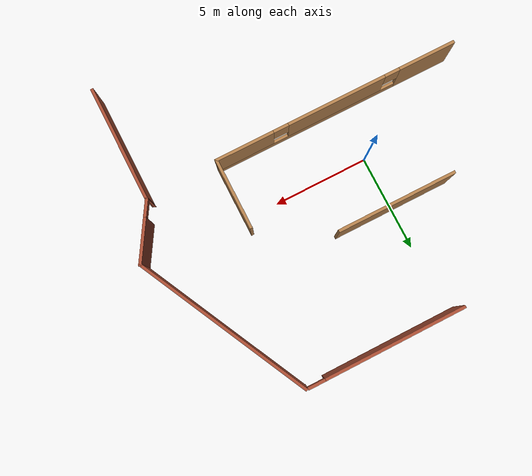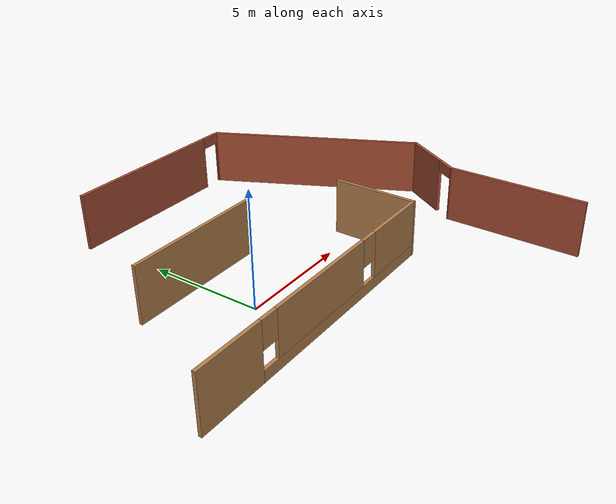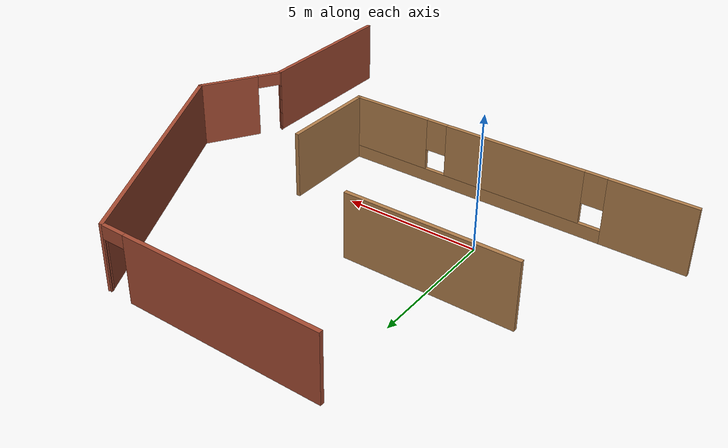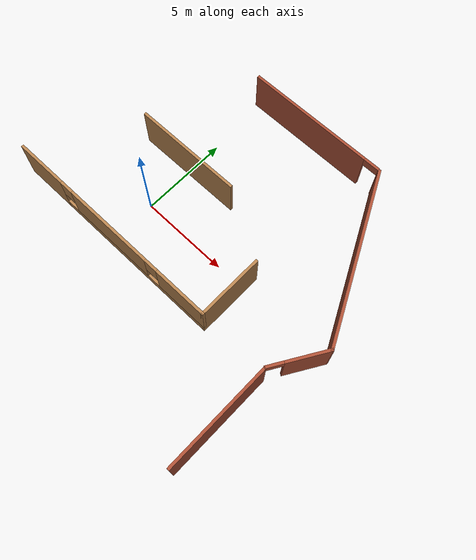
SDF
<sdf version="1.6">
 <model name="office">
  <link name="Wall_10">
   <pose>3.71196 8.6392 0 0 -0 0</pose>
   <visual name="Wall_10_Visual_1">
    <pose>4.12333 0 1.25 0 -0 0</pose>
    <geometry><box><size>0.003332 0.15 2.5</size></box></geometry>
    <material>
     <script><uri>file://media/materials/scripts/gazebo.material</uri><name>Gazebo/Bricks</name></script>
     <ambient>1 1 1 1</ambient>
     <shader type="pixel"/>
     <diffuse>1 1 1 1</diffuse>
     <specular>0.2 0.2 0.2 1</specular>
     <emissive>0 0 0 1</emissive>
    </material>
    <meta><layer>0</layer></meta>
   </visual>
   <visual name="Wall_10_Visual_0">
    <pose>-0.451666 0 1.25 0 -0 0</pose>
    <geometry><box><size>7.34667 0.15 2.5</size></box></geometry>
    <material>
     <script><uri>file://media/materials/scripts/gazebo.material</uri><name>Gazebo/Bricks</name></script>
     <ambient>1 1 1 1</ambient>
     <shader type="pixel"/>
     <diffuse>1 1 1 1</diffuse>
     <specular>0.2 0.2 0.2 1</specular>
     <emissive>0 0 0 1</emissive>
    </material>
    <meta><layer>0</layer></meta>
   </visual>
   <visual name="Wall_10_Visual_2">
    <pose>3.67167 0 2.25 0 -0 0</pose>
    <geometry><box><size>0.9 0.15 0.5</size></box></geometry>
    <material>
     <script><uri>file://media/materials/scripts/gazebo.material</uri><name>Gazebo/Bricks</name></script>
     <ambient>1 1 1 1</ambient>
     <shader type="pixel"/>
     <diffuse>1 1 1 1</diffuse>
     <specular>0.2 0.2 0.2 1</specular>
     <emissive>0 0 0 1</emissive>
    </material>
    <meta><layer>0</layer></meta>
   </visual>
   <collision name="Wall_10_Collision_0">
    <pose>-0.451666 0 1.25 0 -0 0</pose>
    <geometry><box><size>7.34667 0.15 2.5</size></box></geometry>
    <surface>
     <friction>
      <ode><mu>1</mu><mu2>1</mu2><fdir1>0 0 0</fdir1><slip1>0</slip1><slip2>0</slip2></ode>
      <torsional>
       <coefficient>1</coefficient>
       <patch_radius>0</patch_radius>
       <surface_radius>0</surface_radius>
       <use_patch_radius>1</use_patch_radius>
       <ode><slip>0</slip></ode>
      </torsional>
     </friction>
     <bounce><restitution_coefficient>0</restitution_coefficient><threshold>1e+06</threshold></bounce>
     <contact>
      <collide_without_contact>0</collide_without_contact>
      <collide_without_contact_bitmask>1</collide_without_contact_bitmask>
      <collide_bitmask>1</collide_bitmask>
      <ode>
       <soft_cfm>0</soft_cfm>
       <soft_erp>0.2</soft_erp>
       <kp>1e+13</kp>
       <kd>1</kd>
       <max_vel>0.01</max_vel>
       <min_depth>0</min_depth>
      </ode>
      <bullet>
       <split_impulse>1</split_impulse>
       <split_impulse_penetration_threshold>-0.01</split_impulse_penetration_threshold>
       <soft_cfm>0</soft_cfm>
       <soft_erp>0.2</soft_erp>
       <kp>1e+13</kp>
       <kd>1</kd>
      </bullet>
     </contact>
    </surface>
   </collision>
   <collision name="Wall_10_Collision_2">
    <pose>3.67167 0 2.25 0 -0 0</pose>
    <geometry><box><size>0.9 0.15 0.5</size></box></geometry>
    <surface>
     <friction>
      <ode><mu>1</mu><mu2>1</mu2><fdir1>0 0 0</fdir1><slip1>0</slip1><slip2>0</slip2></ode>
      <torsional>
       <coefficient>1</coefficient>
       <patch_radius>0</patch_radius>
       <surface_radius>0</surface_radius>
       <use_patch_radius>1</use_patch_radius>
       <ode><slip>0</slip></ode>
      </torsional>
     </friction>
     <bounce><restitution_coefficient>0</restitution_coefficient><threshold>1e+06</threshold></bounce>
     <contact>
      <collide_without_contact>0</collide_without_contact>
      <collide_without_contact_bitmask>1</collide_without_contact_bitmask>
      <collide_bitmask>1</collide_bitmask>
      <ode>
       <soft_cfm>0</soft_cfm>
       <soft_erp>0.2</soft_erp>
       <kp>1e+13</kp>
       <kd>1</kd>
       <max_vel>0.01</max_vel>
       <min_depth>0</min_depth>
      </ode>
      <bullet>
       <split_impulse>1</split_impulse>
       <split_impulse_penetration_threshold>-0.01</split_impulse_penetration_threshold>
       <soft_cfm>0</soft_cfm>
       <soft_erp>0.2</soft_erp>
       <kp>1e+13</kp>
       <kd>1</kd>
      </bullet>
     </contact>
    </surface>
   </collision>
   <collision name="Wall_10_Collision_1">
    <pose>4.12333 0 1.25 0 -0 0</pose>
    <geometry><box><size>0.003332 0.15 2.5</size></box></geometry>
    <surface>
     <friction>
      <ode><mu>1</mu><mu2>1</mu2><fdir1>0 0 0</fdir1><slip1>0</slip1><slip2>0</slip2></ode>
      <torsional>
       <coefficient>1</coefficient>
       <patch_radius>0</patch_radius>
       <surface_radius>0</surface_radius>
       <use_patch_radius>1</use_patch_radius>
       <ode><slip>0</slip></ode>
      </torsional>
     </friction>
     <bounce><restitution_coefficient>0</restitution_coefficient><threshold>1e+06</threshold></bounce>
     <contact>
      <collide_without_contact>0</collide_without_contact>
      <collide_without_contact_bitmask>1</collide_without_contact_bitmask>
      <collide_bitmask>1</collide_bitmask>
      <ode>
       <soft_cfm>0</soft_cfm>
       <soft_erp>0.2</soft_erp>
       <kp>1e+13</kp>
       <kd>1</kd>
       <max_vel>0.01</max_vel>
       <min_depth>0</min_depth>
      </ode>
      <bullet>
       <split_impulse>1</split_impulse>
       <split_impulse_penetration_threshold>-0.01</split_impulse_penetration_threshold>
       <soft_cfm>0</soft_cfm>
       <soft_erp>0.2</soft_erp>
       <kp>1e+13</kp>
       <kd>1</kd>
      </bullet>
     </contact>
    </surface>
   </collision>
  </link>
  <link name="Wall_12">
   <pose>10.0538 4.3089 0 0 0 -1.1105</pose>
   <inertial>
    <inertia><ixx>0</ixx><ixy>0</ixy><ixz>0</ixz><iyy>0</iyy><iyz>0</iyz><izz>0</izz></inertia>
    <mass>0</mass>
   </inertial>
   <visual name="Wall_12_Visual">
    <pose>0 0 1.25 0 -0 0</pose>
    <geometry><box><size>9.75381 0.15 2.5</size></box></geometry>
    <material>
     <script><uri>file://media/materials/scripts/gazebo.material</uri><name>Gazebo/Bricks</name></script>
     <ambient>0.435294 0.796078 0.67451 1</ambient>
     <shader type="pixel"/>
     <diffuse>1 1 1 1</diffuse>
     <specular>0.2 0.2 0.2 1</specular>
     <emissive>0 0 0 1</emissive>
    </material>
    <meta><layer>0</layer></meta>
   </visual>
   <collision name="Wall_12_Collision">
    <pose>0 0 1.25 0 -0 0</pose>
    <geometry><box><size>9.75381 0.15 2.5</size></box></geometry>
    <surface>
     <friction>
      <ode><mu>1</mu><mu2>1</mu2><fdir1>0 0 0</fdir1><slip1>0</slip1><slip2>0</slip2></ode>
      <torsional>
       <coefficient>1</coefficient>
       <patch_radius>0</patch_radius>
       <surface_radius>0</surface_radius>
       <use_patch_radius>1</use_patch_radius>
       <ode><slip>0</slip></ode>
      </torsional>
     </friction>
     <bounce><restitution_coefficient>0</restitution_coefficient><threshold>1e+06</threshold></bounce>
     <contact>
      <collide_without_contact>0</collide_without_contact>
      <collide_without_contact_bitmask>1</collide_without_contact_bitmask>
      <collide_bitmask>1</collide_bitmask>
      <ode>
       <soft_cfm>0</soft_cfm>
       <soft_erp>0.2</soft_erp>
       <kp>1e+13</kp>
       <kd>1</kd>
       <max_vel>0.01</max_vel>
       <min_depth>0</min_depth>
      </ode>
      <bullet>
       <split_impulse>1</split_impulse>
       <split_impulse_penetration_threshold>-0.01</split_impulse_penetration_threshold>
       <soft_cfm>0</soft_cfm>
       <soft_erp>0.2</soft_erp>
       <kp>1e+13</kp>
       <kd>1</kd>
      </bullet>
     </contact>
    </surface>
   </collision>
  </link>
  <link name="Wall_14">
   <pose>11.3708 -1.34055 0 0 -0 -2.12201</pose>
   <inertial>
    <inertia><ixx>0</ixx><ixy>0</ixy><ixz>0</ixz><iyy>0</iyy><iyz>0</iyz><izz>0</izz></inertia>
    <mass>0</mass>
   </inertial>
   <visual name="Wall_14_Visual_2">
    <pose>1.13537 0 2.25 0 -0 0</pose>
    <geometry><box><size>0.904766 0.15 0.5</size></box></geometry>
    <material>
     <script><uri>file://media/materials/scripts/gazebo.material</uri><name>Gazebo/Bricks</name></script>
     <ambient>0.435294 0.796078 0.67451 1</ambient>
     <shader type="pixel"/>
     <diffuse>1 1 1 1</diffuse>
     <specular>0.2 0.2 0.2 1</specular>
     <emissive>0 0 0 1</emissive>
    </material>
    <meta><layer>0</layer></meta>
   </visual>
   <visual name="Wall_14_Visual_0">
    <pose>-0.469815 0 1.25 0 -0 0</pose>
    <geometry><box><size>2.32261 0.15 2.5</size></box></geometry>
    <material>
     <script><uri>file://media/materials/scripts/gazebo.material</uri><name>Gazebo/Bricks</name></script>
     <ambient>0.435294 0.796078 0.67451 1</ambient>
     <shader type="pixel"/>
     <diffuse>1 1 1 1</diffuse>
     <specular>0.2 0.2 0.2 1</specular>
     <emissive>0 0 0 1</emissive>
    </material>
    <meta><layer>0</layer></meta>
   </visual>
   <visual name="Wall_14_Visual_1">
    <pose>1.60519 0 1.25 0 -0 0</pose>
    <geometry><box><size>0.039702 0.15 2.5</size></box></geometry>
    <material>
     <script><uri>file://media/materials/scripts/gazebo.material</uri><name>Gazebo/Bricks</name></script>
     <ambient>0.435294 0.796078 0.67451 1</ambient>
     <shader type="pixel"/>
     <diffuse>1 1 1 1</diffuse>
     <specular>0.2 0.2 0.2 1</specular>
     <emissive>0 0 0 1</emissive>
    </material>
    <meta><layer>0</layer></meta>
   </visual>
   <collision name="Wall_14_Collision_2">
    <pose>1.13537 0 2.25 0 -0 0</pose>
    <geometry><box><size>0.904766 0.15 0.5</size></box></geometry>
    <surface>
     <friction>
      <ode><mu>1</mu><mu2>1</mu2><fdir1>0 0 0</fdir1><slip1>0</slip1><slip2>0</slip2></ode>
      <torsional>
       <coefficient>1</coefficient>
       <patch_radius>0</patch_radius>
       <surface_radius>0</surface_radius>
       <use_patch_radius>1</use_patch_radius>
       <ode><slip>0</slip></ode>
      </torsional>
     </friction>
     <bounce><restitution_coefficient>0</restitution_coefficient><threshold>1e+06</threshold></bounce>
     <contact>
      <collide_without_contact>0</collide_without_contact>
      <collide_without_contact_bitmask>1</collide_without_contact_bitmask>
      <collide_bitmask>1</collide_bitmask>
      <ode>
       <soft_cfm>0</soft_cfm>
       <soft_erp>0.2</soft_erp>
       <kp>1e+13</kp>
       <kd>1</kd>
       <max_vel>0.01</max_vel>
       <min_depth>0</min_depth>
      </ode>
      <bullet>
       <split_impulse>1</split_impulse>
       <split_impulse_penetration_threshold>-0.01</split_impulse_penetration_threshold>
       <soft_cfm>0</soft_cfm>
       <soft_erp>0.2</soft_erp>
       <kp>1e+13</kp>
       <kd>1</kd>
      </bullet>
     </contact>
    </surface>
   </collision>
   <collision name="Wall_14_Collision_1">
    <pose>1.60519 0 1.25 0 -0 0</pose>
    <geometry><box><size>0.039702 0.15 2.5</size></box></geometry>
    <surface>
     <friction>
      <ode><mu>1</mu><mu2>1</mu2><fdir1>0 0 0</fdir1><slip1>0</slip1><slip2>0</slip2></ode>
      <torsional>
       <coefficient>1</coefficient>
       <patch_radius>0</patch_radius>
       <surface_radius>0</surface_radius>
       <use_patch_radius>1</use_patch_radius>
       <ode><slip>0</slip></ode>
      </torsional>
     </friction>
     <bounce><restitution_coefficient>0</restitution_coefficient><threshold>1e+06</threshold></bounce>
     <contact>
      <collide_without_contact>0</collide_without_contact>
      <collide_without_contact_bitmask>1</collide_without_contact_bitmask>
      <collide_bitmask>1</collide_bitmask>
      <ode>
       <soft_cfm>0</soft_cfm>
       <soft_erp>0.2</soft_erp>
       <kp>1e+13</kp>
       <kd>1</kd>
       <max_vel>0.01</max_vel>
       <min_depth>0</min_depth>
      </ode>
      <bullet>
       <split_impulse>1</split_impulse>
       <split_impulse_penetration_threshold>-0.01</split_impulse_penetration_threshold>
       <soft_cfm>0</soft_cfm>
       <soft_erp>0.2</soft_erp>
       <kp>1e+13</kp>
       <kd>1</kd>
      </bullet>
     </contact>
    </surface>
   </collision>
   <collision name="Wall_14_Collision_0">
    <pose>-0.469815 0 1.25 0 -0 0</pose>
    <geometry><box><size>2.32261 0.15 2.5</size></box></geometry>
    <surface>
     <friction>
      <ode><mu>1</mu><mu2>1</mu2><fdir1>0 0 0</fdir1><slip1>0</slip1><slip2>0</slip2></ode>
      <torsional>
       <coefficient>1</coefficient>
       <patch_radius>0</patch_radius>
       <surface_radius>0</surface_radius>
       <use_patch_radius>1</use_patch_radius>
       <ode><slip>0</slip></ode>
      </torsional>
     </friction>
     <bounce><restitution_coefficient>0</restitution_coefficient><threshold>1e+06</threshold></bounce>
     <contact>
      <collide_without_contact>0</collide_without_contact>
      <collide_without_contact_bitmask>1</collide_without_contact_bitmask>
      <collide_bitmask>1</collide_bitmask>
      <ode>
       <soft_cfm>0</soft_cfm>
       <soft_erp>0.2</soft_erp>
       <kp>1e+13</kp>
       <kd>1</kd>
       <max_vel>0.01</max_vel>
       <min_depth>0</min_depth>
      </ode>
      <bullet>
       <split_impulse>1</split_impulse>
       <split_impulse_penetration_threshold>-0.01</split_impulse_penetration_threshold>
       <soft_cfm>0</soft_cfm>
       <soft_erp>0.2</soft_erp>
       <kp>1e+13</kp>
       <kd>1</kd>
      </bullet>
     </contact>
    </surface>
   </collision>
  </link>
  <link name="Wall_15">
   <pose>10.5606 -5.72124 0 0 0 -1.5708</pose>
   <visual name="Wall_15_Visual">
    <pose>0 0 1.25 0 -0 0</pose>
    <geometry><box><size>6 0.15 2.5</size></box></geometry>
    <material>
     <script><uri>file://media/materials/scripts/gazebo.material</uri><name>Gazebo/Bricks</name></script>
     <ambient>0.435294 0.796078 0.67451 1</ambient>
     <shader type="pixel"/>
     <diffuse>1 1 1 1</diffuse>
     <specular>0.2 0.2 0.2 1</specular>
     <emissive>0 0 0 1</emissive>
    </material>
    <meta><layer>0</layer></meta>
   </visual>
   <collision name="Wall_15_Collision">
    <pose>0 0 1.25 0 -0 0</pose>
    <geometry><box><size>6 0.15 2.5</size></box></geometry>
    <surface>
     <friction>
      <ode><mu>1</mu><mu2>1</mu2><fdir1>0 0 0</fdir1><slip1>0</slip1><slip2>0</slip2></ode>
      <torsional>
       <coefficient>1</coefficient>
       <patch_radius>0</patch_radius>
       <surface_radius>0</surface_radius>
       <use_patch_radius>1</use_patch_radius>
       <ode><slip>0</slip></ode>
      </torsional>
     </friction>
     <bounce><restitution_coefficient>0</restitution_coefficient><threshold>1e+06</threshold></bounce>
     <contact>
      <collide_without_contact>0</collide_without_contact>
      <collide_without_contact_bitmask>1</collide_without_contact_bitmask>
      <collide_bitmask>1</collide_bitmask>
      <ode>
       <soft_cfm>0</soft_cfm>
       <soft_erp>0.2</soft_erp>
       <kp>1e+13</kp>
       <kd>1</kd>
       <max_vel>0.01</max_vel>
       <min_depth>0</min_depth>
      </ode>
      <bullet>
       <split_impulse>1</split_impulse>
       <split_impulse_penetration_threshold>-0.01</split_impulse_penetration_threshold>
       <soft_cfm>0</soft_cfm>
       <soft_erp>0.2</soft_erp>
       <kp>1e+13</kp>
       <kd>1</kd>
      </bullet>
     </contact>
    </surface>
   </collision>
  </link>
  <link name="Wall_23">
   <pose>0.357662 -2.83979 0 0 -0 0</pose>
   <visual name="Wall_23_Visual_0">
    <pose>-4.98806 0 1.25 0 -0 0</pose>
    <geometry><box><size>3.02388 0.15 2.5</size></box></geometry>
    <material>
     <script><uri>file://media/materials/scripts/gazebo.material</uri><name>Gazebo/Wood</name></script>
     <ambient>0.435294 0.796078 0.67451 1</ambient>
     <shader type="pixel"/>
     <diffuse>1 1 1 1</diffuse>
     <specular>0.2 0.2 0.2 1</specular>
     <emissive>0 0 0 1</emissive>
    </material>
    <meta><layer>0</layer></meta>
   </visual>
   <visual name="Wall_23_Visual_1">
    <pose>1.51194 0 0.25 0 -0 0</pose>
    <geometry><box><size>9.97612 0.15 0.5</size></box></geometry>
    <material>
     <script><uri>file://media/materials/scripts/gazebo.material</uri><name>Gazebo/Wood</name></script>
     <ambient>0.435294 0.796078 0.67451 1</ambient>
     <shader type="pixel"/>
     <diffuse>1 1 1 1</diffuse>
     <specular>0.2 0.2 0.2 1</specular>
     <emissive>0 0 0 1</emissive>
    </material>
    <meta><layer>0</layer></meta>
   </visual>
   <visual name="Wall_23_Visual_2">
    <pose>-0.051543 0 1.5 0 -0 0</pose>
    <geometry><box><size>5.24915 0.15 2</size></box></geometry>
    <material>
     <script><uri>file://media/materials/scripts/gazebo.material</uri><name>Gazebo/Wood</name></script>
     <ambient>0.435294 0.796078 0.67451 1</ambient>
     <shader type="pixel"/>
     <diffuse>1 1 1 1</diffuse>
     <specular>0.2 0.2 0.2 1</specular>
     <emissive>0 0 0 1</emissive>
    </material>
    <meta><layer>0</layer></meta>
   </visual>
   <visual name="Wall_23_Visual_3">
    <pose>4.93652 0 1.5 0 -0 0</pose>
    <geometry><box><size>3.12697 0.15 2</size></box></geometry>
    <material>
     <script><uri>file://media/materials/scripts/gazebo.material</uri><name>Gazebo/Wood</name></script>
     <ambient>0.435294 0.796078 0.67451 1</ambient>
     <shader type="pixel"/>
     <diffuse>1 1 1 1</diffuse>
     <specular>0.2 0.2 0.2 1</specular>
     <emissive>0 0 0 1</emissive>
    </material>
    <meta><layer>0</layer></meta>
   </visual>
   <visual name="Wall_23_Visual_4">
    <pose>-3.07612 0 1.9 0 -0 0</pose>
    <geometry><box><size>0.8 0.15 1.2</size></box></geometry>
    <material>
     <script><uri>file://media/materials/scripts/gazebo.material</uri><name>Gazebo/Wood</name></script>
     <ambient>0.435294 0.796078 0.67451 1</ambient>
     <shader type="pixel"/>
     <diffuse>1 1 1 1</diffuse>
     <specular>0.2 0.2 0.2 1</specular>
     <emissive>0 0 0 1</emissive>
    </material>
    <meta><layer>0</layer></meta>
   </visual>
   <visual name="Wall_23_Visual_5">
    <pose>2.97303 0 1.9 0 -0 0</pose>
    <geometry><box><size>0.8 0.15 1.2</size></box></geometry>
    <material>
     <script><uri>file://media/materials/scripts/gazebo.material</uri><name>Gazebo/Wood</name></script>
     <ambient>0.435294 0.796078 0.67451 1</ambient>
     <shader type="pixel"/>
     <diffuse>1 1 1 1</diffuse>
     <specular>0.2 0.2 0.2 1</specular>
     <emissive>0 0 0 1</emissive>
    </material>
    <meta><layer>0</layer></meta>
   </visual>
   <collision name="Wall_23_Collision_0">
    <pose>-4.98806 0 1.25 0 -0 0</pose>
    <geometry><box><size>3.02388 0.15 2.5</size></box></geometry>
    <surface>
     <friction>
      <ode><mu>1</mu><mu2>1</mu2><fdir1>0 0 0</fdir1><slip1>0</slip1><slip2>0</slip2></ode>
      <torsional>
       <coefficient>1</coefficient>
       <patch_radius>0</patch_radius>
       <surface_radius>0</surface_radius>
       <use_patch_radius>1</use_patch_radius>
       <ode><slip>0</slip></ode>
      </torsional>
     </friction>
     <bounce><restitution_coefficient>0</restitution_coefficient><threshold>1e+06</threshold></bounce>
     <contact>
      <collide_without_contact>0</collide_without_contact>
      <collide_without_contact_bitmask>1</collide_without_contact_bitmask>
      <collide_bitmask>1</collide_bitmask>
      <ode>
       <soft_cfm>0</soft_cfm>
       <soft_erp>0.2</soft_erp>
       <kp>1e+13</kp>
       <kd>1</kd>
       <max_vel>0.01</max_vel>
       <min_depth>0</min_depth>
      </ode>
      <bullet>
       <split_impulse>1</split_impulse>
       <split_impulse_penetration_threshold>-0.01</split_impulse_penetration_threshold>
       <soft_cfm>0</soft_cfm>
       <soft_erp>0.2</soft_erp>
       <kp>1e+13</kp>
       <kd>1</kd>
      </bullet>
     </contact>
    </surface>
   </collision>
   <collision name="Wall_23_Collision_1">
    <pose>1.51194 0 0.25 0 -0 0</pose>
    <geometry><box><size>9.97612 0.15 0.5</size></box></geometry>
    <surface>
     <friction>
      <ode><mu>1</mu><mu2>1</mu2><fdir1>0 0 0</fdir1><slip1>0</slip1><slip2>0</slip2></ode>
      <torsional>
       <coefficient>1</coefficient>
       <patch_radius>0</patch_radius>
       <surface_radius>0</surface_radius>
       <use_patch_radius>1</use_patch_radius>
       <ode><slip>0</slip></ode>
      </torsional>
     </friction>
     <bounce><restitution_coefficient>0</restitution_coefficient><threshold>1e+06</threshold></bounce>
     <contact>
      <collide_without_contact>0</collide_without_contact>
      <collide_without_contact_bitmask>1</collide_without_contact_bitmask>
      <collide_bitmask>1</collide_bitmask>
      <ode>
       <soft_cfm>0</soft_cfm>
       <soft_erp>0.2</soft_erp>
       <kp>1e+13</kp>
       <kd>1</kd>
       <max_vel>0.01</max_vel>
       <min_depth>0</min_depth>
      </ode>
      <bullet>
       <split_impulse>1</split_impulse>
       <split_impulse_penetration_threshold>-0.01</split_impulse_penetration_threshold>
       <soft_cfm>0</soft_cfm>
       <soft_erp>0.2</soft_erp>
       <kp>1e+13</kp>
       <kd>1</kd>
      </bullet>
     </contact>
    </surface>
   </collision>
   <collision name="Wall_23_Collision_2">
    <pose>-0.051543 0 1.5 0 -0 0</pose>
    <geometry><box><size>5.24915 0.15 2</size></box></geometry>
    <surface>
     <friction>
      <ode><mu>1</mu><mu2>1</mu2><fdir1>0 0 0</fdir1><slip1>0</slip1><slip2>0</slip2></ode>
      <torsional>
       <coefficient>1</coefficient>
       <patch_radius>0</patch_radius>
       <surface_radius>0</surface_radius>
       <use_patch_radius>1</use_patch_radius>
       <ode><slip>0</slip></ode>
      </torsional>
     </friction>
     <bounce><restitution_coefficient>0</restitution_coefficient><threshold>1e+06</threshold></bounce>
     <contact>
      <collide_without_contact>0</collide_without_contact>
      <collide_without_contact_bitmask>1</collide_without_contact_bitmask>
      <collide_bitmask>1</collide_bitmask>
      <ode>
       <soft_cfm>0</soft_cfm>
       <soft_erp>0.2</soft_erp>
       <kp>1e+13</kp>
       <kd>1</kd>
       <max_vel>0.01</max_vel>
       <min_depth>0</min_depth>
      </ode>
      <bullet>
       <split_impulse>1</split_impulse>
       <split_impulse_penetration_threshold>-0.01</split_impulse_penetration_threshold>
       <soft_cfm>0</soft_cfm>
       <soft_erp>0.2</soft_erp>
       <kp>1e+13</kp>
       <kd>1</kd>
      </bullet>
     </contact>
    </surface>
   </collision>
   <collision name="Wall_23_Collision_3">
    <pose>4.93652 0 1.5 0 -0 0</pose>
    <geometry><box><size>3.12697 0.15 2</size></box></geometry>
    <surface>
     <friction>
      <ode><mu>1</mu><mu2>1</mu2><fdir1>0 0 0</fdir1><slip1>0</slip1><slip2>0</slip2></ode>
      <torsional>
       <coefficient>1</coefficient>
       <patch_radius>0</patch_radius>
       <surface_radius>0</surface_radius>
       <use_patch_radius>1</use_patch_radius>
       <ode><slip>0</slip></ode>
      </torsional>
     </friction>
     <bounce><restitution_coefficient>0</restitution_coefficient><threshold>1e+06</threshold></bounce>
     <contact>
      <collide_without_contact>0</collide_without_contact>
      <collide_without_contact_bitmask>1</collide_without_contact_bitmask>
      <collide_bitmask>1</collide_bitmask>
      <ode>
       <soft_cfm>0</soft_cfm>
       <soft_erp>0.2</soft_erp>
       <kp>1e+13</kp>
       <kd>1</kd>
       <max_vel>0.01</max_vel>
       <min_depth>0</min_depth>
      </ode>
      <bullet>
       <split_impulse>1</split_impulse>
       <split_impulse_penetration_threshold>-0.01</split_impulse_penetration_threshold>
       <soft_cfm>0</soft_cfm>
       <soft_erp>0.2</soft_erp>
       <kp>1e+13</kp>
       <kd>1</kd>
      </bullet>
     </contact>
    </surface>
   </collision>
   <collision name="Wall_23_Collision_4">
    <pose>-3.07612 0 1.9 0 -0 0</pose>
    <geometry><box><size>0.8 0.15 1.2</size></box></geometry>
    <surface>
     <friction>
      <ode><mu>1</mu><mu2>1</mu2><fdir1>0 0 0</fdir1><slip1>0</slip1><slip2>0</slip2></ode>
      <torsional>
       <coefficient>1</coefficient>
       <patch_radius>0</patch_radius>
       <surface_radius>0</surface_radius>
       <use_patch_radius>1</use_patch_radius>
       <ode><slip>0</slip></ode>
      </torsional>
     </friction>
     <bounce><restitution_coefficient>0</restitution_coefficient><threshold>1e+06</threshold></bounce>
     <contact>
      <collide_without_contact>0</collide_without_contact>
      <collide_without_contact_bitmask>1</collide_without_contact_bitmask>
      <collide_bitmask>1</collide_bitmask>
      <ode>
       <soft_cfm>0</soft_cfm>
       <soft_erp>0.2</soft_erp>
       <kp>1e+13</kp>
       <kd>1</kd>
       <max_vel>0.01</max_vel>
       <min_depth>0</min_depth>
      </ode>
      <bullet>
       <split_impulse>1</split_impulse>
       <split_impulse_penetration_threshold>-0.01</split_impulse_penetration_threshold>
       <soft_cfm>0</soft_cfm>
       <soft_erp>0.2</soft_erp>
       <kp>1e+13</kp>
       <kd>1</kd>
      </bullet>
     </contact>
    </surface>
   </collision>
   <collision name="Wall_23_Collision_5">
    <pose>2.97303 0 1.9 0 -0 0</pose>
    <geometry><box><size>0.8 0.15 1.2</size></box></geometry>
    <surface>
     <friction>
      <ode><mu>1</mu><mu2>1</mu2><fdir1>0 0 0</fdir1><slip1>0</slip1><slip2>0</slip2></ode>
      <torsional>
       <coefficient>1</coefficient>
       <patch_radius>0</patch_radius>
       <surface_radius>0</surface_radius>
       <use_patch_radius>1</use_patch_radius>
       <ode><slip>0</slip></ode>
      </torsional>
     </friction>
     <bounce><restitution_coefficient>0</restitution_coefficient><threshold>1e+06</threshold></bounce>
     <contact>
      <collide_without_contact>0</collide_without_contact>
      <collide_without_contact_bitmask>1</collide_without_contact_bitmask>
      <collide_bitmask>1</collide_bitmask>
      <ode>
       <soft_cfm>0</soft_cfm>
       <soft_erp>0.2</soft_erp>
       <kp>1e+13</kp>
       <kd>1</kd>
       <max_vel>0.01</max_vel>
       <min_depth>0</min_depth>
      </ode>
      <bullet>
       <split_impulse>1</split_impulse>
       <split_impulse_penetration_threshold>-0.01</split_impulse_penetration_threshold>
       <soft_cfm>0</soft_cfm>
       <soft_erp>0.2</soft_erp>
       <kp>1e+13</kp>
       <kd>1</kd>
      </bullet>
     </contact>
    </surface>
   </collision>
  </link>
  <link name="Wall_24">
   <pose>6.78266 -1.03979 0 0 -0 1.5708</pose>
   <visual name="Wall_24_Visual">
    <pose>0 0 1.25 0 -0 0</pose>
    <geometry><box><size>3.75 0.15 2.5</size></box></geometry>
    <material>
     <script><uri>file://media/materials/scripts/gazebo.material</uri><name>Gazebo/Wood</name></script>
     <ambient>0.435294 0.796078 0.67451 1</ambient>
     <shader type="pixel"/>
     <diffuse>1 1 1 1</diffuse>
     <specular>0.2 0.2 0.2 1</specular>
     <emissive>0 0 0 1</emissive>
    </material>
    <meta><layer>0</layer></meta>
   </visual>
   <collision name="Wall_24_Collision">
    <pose>0 0 1.25 0 -0 0</pose>
    <geometry><box><size>3.75 0.15 2.5</size></box></geometry>
    <surface>
     <friction>
      <ode><mu>1</mu><mu2>1</mu2><fdir1>0 0 0</fdir1><slip1>0</slip1><slip2>0</slip2></ode>
      <torsional>
       <coefficient>1</coefficient>
       <patch_radius>0</patch_radius>
       <surface_radius>0</surface_radius>
       <use_patch_radius>1</use_patch_radius>
       <ode><slip>0</slip></ode>
      </torsional>
     </friction>
     <bounce><restitution_coefficient>0</restitution_coefficient><threshold>1e+06</threshold></bounce>
     <contact>
      <collide_without_contact>0</collide_without_contact>
      <collide_without_contact_bitmask>1</collide_without_contact_bitmask>
      <collide_bitmask>1</collide_bitmask>
      <ode>
       <soft_cfm>0</soft_cfm>
       <soft_erp>0.2</soft_erp>
       <kp>1e+13</kp>
       <kd>1</kd>
       <max_vel>0.01</max_vel>
       <min_depth>0</min_depth>
      </ode>
      <bullet>
       <split_impulse>1</split_impulse>
       <split_impulse_penetration_threshold>-0.01</split_impulse_penetration_threshold>
       <soft_cfm>0</soft_cfm>
       <soft_erp>0.2</soft_erp>
       <kp>1e+13</kp>
       <kd>1</kd>
      </bullet>
     </contact>
    </surface>
   </collision>
  </link>
  <link name="Wall_27">
   <pose>0.058577 2.83612 0 0 -0 0</pose>
   <visual name="Wall_27_Visual">
    <pose>0 0 1.25 0 -0 0</pose>
    <geometry><box><size>6.25 0.15 2.5</size></box></geometry>
    <material>
     <script><uri>file://media/materials/scripts/gazebo.material</uri><name>Gazebo/Wood</name></script>
     <ambient>0.435294 0.796078 0.67451 1</ambient>
     <shader type="pixel"/>
     <diffuse>1 1 1 1</diffuse>
     <specular>0.2 0.2 0.2 1</specular>
     <emissive>0 0 0 1</emissive>
    </material>
    <meta><layer>0</layer></meta>
   </visual>
   <collision name="Wall_27_Collision">
    <pose>0 0 1.25 0 -0 0</pose>
    <geometry><box><size>6.25 0.15 2.5</size></box></geometry>
    <surface>
     <friction>
      <ode><mu>1</mu><mu2>1</mu2><fdir1>0 0 0</fdir1><slip1>0</slip1><slip2>0</slip2></ode>
      <torsional>
       <coefficient>1</coefficient>
       <patch_radius>0</patch_radius>
       <surface_radius>0</surface_radius>
       <use_patch_radius>1</use_patch_radius>
       <ode><slip>0</slip></ode>
      </torsional>
     </friction>
     <bounce><restitution_coefficient>0</restitution_coefficient><threshold>1e+06</threshold></bounce>
     <contact>
      <collide_without_contact>0</collide_without_contact>
      <collide_without_contact_bitmask>1</collide_without_contact_bitmask>
      <collide_bitmask>1</collide_bitmask>
      <ode>
       <soft_cfm>0</soft_cfm>
       <soft_erp>0.2</soft_erp>
       <kp>1e+13</kp>
       <kd>1</kd>
       <max_vel>0.01</max_vel>
       <min_depth>0</min_depth>
      </ode>
      <bullet>
       <split_impulse>1</split_impulse>
       <split_impulse_penetration_threshold>-0.01</split_impulse_penetration_threshold>
       <soft_cfm>0</soft_cfm>
       <soft_erp>0.2</soft_erp>
       <kp>1e+13</kp>
       <kd>1</kd>
      </bullet>
     </contact>
    </surface>
   </collision>
  </link>
  <static>1</static>
 </model>
</sdf>
